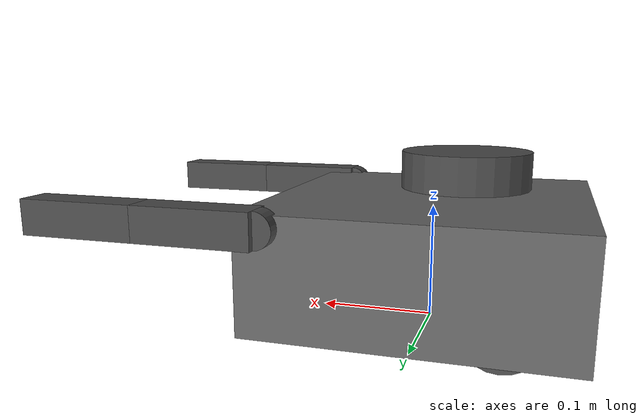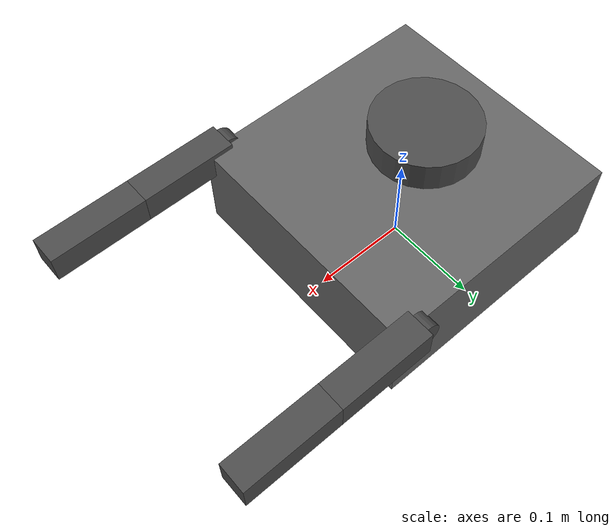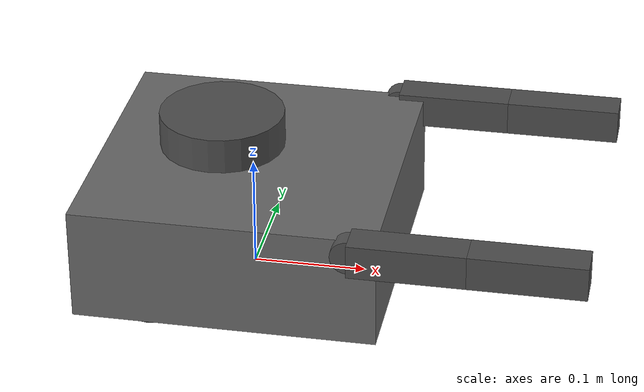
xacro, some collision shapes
<?xml version="1.0" ?>
<!-- |    This document was autogenerated by xacro from /home/duckbe/catkin_ws/src/my_simulations/urdf/turtlebot3_my_model.urdf.xacro | -->
<!-- |    EDITING THIS FILE BY HAND IS NOT RECOMMENDED                                 | -->
<robot name="turtlebot3_my_model" xmlns:xacro="http://ros.org/wiki/xacro">
    <xacro:include filename="$(find my_simulations)/urdf/turtlebot3_my_model.gazebo.xacro"/>

    <link name="base_footprint" />

    <joint name="base_joint" type="fixed">
        <parent link="base_footprint" />
        <child link="base_link" />
        <origin rpy="0 0 0" xyz="0 0 0.06" />
        <!-- Initial point because child & parent link -->
    </joint>

    <!-- Deliver robot Base -->
    <link name="base_link">
        <visual>
            <!-- refer sdf (Initial point reference point)-->
            <origin rpy="0 0 0" xyz="0 0 0.0" />
            <geometry>
                <box size="0.265 0.265 0.1" />
            </geometry>
            <material name="light_black" />
        </visual>
        <collision>
            <!-- refer sdf(Initial point reference point) -->
            <origin rpy="0 0 0" xyz="0 0 0" />
            <geometry>
                <!-- refer sdf(Initial point reference point) -->
                <box size="0.265 0.265 0.1" />
            </geometry>
        </collision>

        <inertial>
            <origin rpy="0 0 0" xyz="0 0 0.0" />
            <mass value="1.5" />
            <inertia ixx="8.7002718e-03" ixy="-4.7576583e-05" ixz="1.1160499e-04"
                    iyy="8.6195418e-03" iyz="-3.5422299e-06"
                    izz="1.4612727e-02" />
        </inertial>
    </link>

    <!-- Deliver robot Caster-->
    <!-- refer sdf (Initial point reference point)-->
    <joint name="caster_back_joint" type="fixed">
        <parent link="base_link" />
        <child link="caster_back_link" />
        <origin rpy="0 0 0" xyz="0.11 0 -0.055" />
    </joint>

    <link name="caster_back_link">
        <visual>
            <!-- refer sdf (Initial point reference point)-->
            <origin rpy="0 0 0" xyz="0 0 0" />
            <geometry>
                <sphere radius="0.005" />
            </geometry>
            <material name="light_black" />
        </visual>
        <collision>
            <origin rpy="0 0 0" xyz="0 0 0" />
            <geometry>
                <sphere radius="0.005" />
            </geometry>
        </collision>

        <inertial>
            <origin xyz="0 0 0" />
            <mass value="0.005" />
            <inertia ixx="0.001" ixy="0.0" ixz="0.0"
                    iyy="0.001" iyz="0.0"
                    izz="0.001" />
        </inertial>
    </link>

    <!-- Deliver robot Left Wheel-->
    <!-- refer sdf (Initial point reference point)-->
    <joint name="wheel_left_joint" type="continuous">
        <parent link="base_link" />
        <child link="wheel_left_link" />
        <origin rpy="-1.57 0 0" xyz="-0.07 0.11 -0.027" />
        <axis xyz="0 0 1" />
    </joint>

    <link name="wheel_left_link">
        <visual>
            <origin rpy="0 0 0" xyz="0 0 0" />
            <geometry>
                <cylinder length="0.018" radius="0.033" />
            </geometry>
            <material name="dark" />
        </visual>
        <collision>
            <origin rpy="0 0 0" xyz="0 0 0" />
            <geometry>
                <cylinder length="0.018" radius="0.033" />
            </geometry>
        </collision>

        <inertial>
            <origin xyz="0 0 0" />
            <mass value="2.8498940e-02" />
            <inertia ixx="1.1175580e-05" ixy="-4.2369783e-11" ixz="-5.9381719e-09"
                    iyy="1.1192413e-05" iyz="-1.4400107e-11"
                    izz="2.0712558e-05" />
        </inertial>
    </link>

    <!-- Deliver robot Right Wheel -->
    <!-- refer sdf (Initial point reference point)-->
    <joint name="wheel_right_joint" type="continuous">
        <parent link="base_link" />
        <child link="wheel_right_link" />
        <origin rpy="-1.57 0 0" xyz="-0.07 -0.11 -0.027" />
        <axis xyz="0 0 1" />
    </joint>

    <link name="wheel_right_link">
        <visual>
            <origin rpy="0 0 0" xyz="0 0 0" />
            <geometry>
                <cylinder length="0.018" radius="0.033" />
            </geometry>
            <material name="dark" />
        </visual>
        <collision>
            <origin rpy="0 0 0" xyz="0 0 0" />
            <geometry>
                <cylinder length="0.018" radius="0.033" />
            </geometry>
        </collision>

        <inertial>
            <origin xyz="0 0 0" />
            <mass value="2.8498940e-02" />
            <inertia ixx="1.1175580e-05" ixy="-4.2369783e-11" ixz="-5.9381719e-09"
                    iyy="1.1192413e-05" iyz="-1.4400107e-11"
                    izz="2.0712558e-05" />
        </inertial>
    </link>

    <!-- Deliver robot joint1-->
    <joint name="joint1_left_joint" type="revolute">
        <!--revolute have to limit-->
        <parent link="base_link" />
        <child link="joint1_left_link" />
        <origin rpy="-1.57 0 0" xyz="0.11 -0.135 0.04" />
        <axis xyz="0 0 1" />
        <!--Force, degree max min, velocity-->
        <limit effort="3" lower="-2.617" upper="2.617" velocity="0.05" />
    </joint>

    <link name="joint1_left_link">
        <visual>
            <origin rpy="0 0 0" xyz="0 0 0" />
            <geometry>
                <cylinder length="0.018" radius="0.015" />
            </geometry>
            <material name="dark" />
        </visual>
        <collision>
            <origin rpy="0 0 0" xyz="0 0 0" />
            <geometry>
                <cylinder length="0.018" radius="0.015" />
            </geometry>
        </collision>
        <visual>
            <origin rpy="0 0 0" xyz="0.05 0 0" />
            <geometry>
                <box size="0.1 0.03 0.03" />
            </geometry>
            <material name="dark" />
        </visual>
        <collision>
            <origin rpy="0 0 0" xyz="0.05 0 0" />
            <geometry>
                <box size="0.1 0.03 0.03" />
            </geometry>
        </collision>

        <inertial>
            <origin xyz="0.05 0 0" />
            <mass value="0.01" />
            <inertia ixx="1.6425e-6" ixy="0" ixz="0" iyy="1.6425e-6" iyz="0" izz="1.125e-6" />
        </inertial>
    </link>

    <joint name="joint1_right_joint" type="revolute">
        <parent link="base_link" />
        <child link="joint1_right_link" />
        <origin rpy="-1.57 0 0" xyz="0.11 0.135 0.04" />
        <axis xyz="0 0 1" />
        <limit effort="3" lower="-2.617" upper="2.617" velocity="0.05" />
    </joint>

    <link name="joint1_right_link">
        <visual>
            <origin rpy="0 0 0" xyz="0 0 0" />
            <geometry>
                <cylinder length="0.018" radius="0.015" />
            </geometry>
            <material name="dark" />
        </visual>
        <collision>
            <origin rpy="0 0 0" xyz="0 0 0" />
            <geometry>
                <cylinder length="0.018" radius="0.015" />
            </geometry>
        </collision>
        <visual>
            <origin rpy="0 0 0" xyz="0.05 0 0" />
            <geometry>
                <box size="0.1 0.03 0.03" />
            </geometry>
            <material name="dark" />
        </visual>
        <collision>
            <origin rpy="0 0 0" xyz="0.05 0 0" />
            <geometry>
                <box size="0.1 0.03 0.03" />
            </geometry>
        </collision>

        <inertial>
            <origin xyz="0.05 0 0" />
            <mass value="0.01" />
            <inertia ixx="1.6425e-6" ixy="0" ixz="0" iyy="1.6425e-6" iyz="0" izz="1.125e-6" />
        </inertial>
    </link>

    <!-- Deliver robot joint2-->
    <joint name="joint2_left_joint" type="revolute">
        <parent link="joint1_left_link" />
        <child link="joint2_left_link" />
        <origin rpy="0 0 0" xyz="0.1 0 0" />
        <axis xyz="0 0 1" />
        <limit effort="3" lower="-2.617" upper="2.617" velocity="0.05" />
    </joint>
    <link name="joint2_left_link">
        <visual>
            <origin rpy="0 0 0" xyz="0 0 0" />
            <geometry>
                <cylinder length="0.018" radius="0.015" />
            </geometry>
            <material name="dark" />
        </visual>
        <collision>
            <origin rpy="0 0 0" xyz="0 0 0" />
            <geometry>
                <cylinder length="0.018" radius="0.015" />
            </geometry>
        </collision>
        <visual>
            <origin rpy="0 0 0" xyz="0.05 0 0" />
            <geometry>
                <box size="0.1 0.03 0.03" />
            </geometry>
            <material name="dark" />
        </visual>
        <collision>
            <origin rpy="0 0 0" xyz="0.05 0 0" />
            <geometry>
                <box size="0.1 0.03 0.03" />
            </geometry>
        </collision>

        <inertial>
            <origin xyz="0.05 0 0" />
            <mass value="0.01" />
            <inertia ixx="1.6425e-6" ixy="0" ixz="0" iyy="1.6425e-6" iyz="0" izz="1.125e-6" />
        </inertial>
    </link>

    <joint name="joint2_right_joint" type="revolute">
        <parent link="joint1_right_link" />
        <child link="joint2_right_link" />
        <origin rpy="0 0 0" xyz="0.1 0 0" />
        <axis xyz="0 0 1" />
        <limit effort="3" lower="-2.617" upper="2.617" velocity="0.05" />
    </joint>
    <link name="joint2_right_link">
        <visual>
            <origin rpy="0 0 0" xyz="0 0 0" />
            <geometry>
                <cylinder length="0.018" radius="0.015" />
            </geometry>
            <material name="dark" />
        </visual>
        <collision>
            <origin rpy="0 0 0" xyz="0 0 0" />
            <geometry>
                <cylinder length="0.018" radius="0.015" />
            </geometry>
        </collision>
        <visual>
            <origin rpy="0 0 0" xyz="0.05 0 0" />
            <geometry>
                <box size="0.1 0.03 0.03" />
            </geometry>
            <material name="dark" />
        </visual>
        <collision>
            <origin rpy="0 0 0" xyz="0.05 0 0" />
            <geometry>
                <box size="0.1 0.03 0.03" />
            </geometry>
        </collision>

        <inertial>
            <origin xyz="0.05 0 0" />
            <mass value="0.01" />
            <inertia ixx="1.6425e-6" ixy="0" ixz="0" iyy="1.6425e-6" iyz="0" izz="1.125e-6" />
        </inertial>
    </link>

    <!-- Deliver robot IMU-->
    <joint name="imu_joint" type="fixed">
        <parent link="base_link" />
        <child link="imu_link" />
        <origin rpy="0 0 0" xyz="0.0 0 -0.048" />
    </joint>
    <link name="imu_link" />

    <!-- Deliver robot scan-->
    <joint name="scan_joint" type="fixed">
        <parent link="base_link" />
        <child link="base_scan" />
        <origin rpy="0 0 3.14" xyz="-0.012 0 0.08" />
    </joint>
    <link name="base_scan">
        <visual>
            <origin rpy="0 0 0" xyz="0 0 0" />
            <geometry>
                <mesh filename="package://turtlebot3_description/meshes/sensors/lds.stl" scale="0.001 0.001 0.001" />
            </geometry>
            <material name="dark" />
        </visual>
        <collision>
            <origin rpy="0 0 0" xyz="0.015 0 -0.0065" />
            <geometry>
                <cylinder length="0.0315" radius="0.055" />
            </geometry>
        </collision>

        <inertial>
            <mass value="0.114" />
            <origin xyz="0 0 0" />
            <inertia ixx="0.001" ixy="0.0" ixz="0.0" iyy="0.001" iyz="0.0" izz="0.001" />
        </inertial>
    </link>

    <transmission name="trans_joint1_left_joint">
        <type>transmission_interface/SimpleTransmission</type>
        <joint name="joint1_left_joint">
            <hardwareInterface>hardware_interface/EffortJointInterface</hardwareInterface>
        </joint>
        <actuator name="joint1_left_joint_motor">
            <hardwareInterface>hardware_interface/EffortJointInterface</hardwareInterface>
            <mechanicalReduction>1</mechanicalReduction>
        </actuator>
    </transmission>
    <transmission name="trans_joint1_right_joint">
        <type>transmission_interface/SimpleTransmission</type>
        <joint name="joint1_right_joint">
            <hardwareInterface>hardware_interface/EffortJointInterface</hardwareInterface>
        </joint>
        <actuator name="joint1_right_joint_motor">
            <hardwareInterface>hardware_interface/EffortJointInterface</hardwareInterface>
            <mechanicalReduction>1</mechanicalReduction>
        </actuator>
    </transmission>
    <transmission name="trans_joint2_left_joint">
        <type>transmission_interface/SimpleTransmission</type>
        <joint name="joint2_left_joint">
            <hardwareInterface>hardware_interface/EffortJointInterface</hardwareInterface>
        </joint>
        <actuator name="joint2_left_joint_motor">
            <hardwareInterface>hardware_interface/EffortJointInterface</hardwareInterface>
            <mechanicalReduction>1</mechanicalReduction>
        </actuator>
    </transmission>
    <transmission name="trans_joint2_right_joint">
        <type>transmission_interface/SimpleTransmission</type>
        <joint name="joint2_right_joint">
            <hardwareInterface>hardware_interface/EffortJointInterface</hardwareInterface>
        </joint>
        <actuator name="joint2_right_joint_motor">
            <hardwareInterface>hardware_interface/EffortJointInterface</hardwareInterface>
            <mechanicalReduction>1</mechanicalReduction>
        </actuator>
    </transmission>

</robot>

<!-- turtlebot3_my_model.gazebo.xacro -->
<robot name="turtlebot3_my_model_sim" xmlns:xacro="http://ros.org/wiki/xacro">
    <xacro:arg name="laser_visual"  default="false"/>
    <xacro:arg name="imu_visual"    default="false"/>

   <!-- Init colour -->
    <material name="black">
        <color rgba="0.0 0.0 0.0 1.0" />
    </material>
    <material name="dark">
        <color rgba="0.3 0.3 0.3 1.0" />
    </material>
    <material name="light_black">
        <color rgba="0.4 0.4 0.4 1.0" />
    </material>
    <material name="blue">
        <color rgba="0.0 0.0 0.8 1.0" />
    </material>
    <material name="green">
        <color rgba="0.0 0.8 0.0 1.0" />
    </material>
    <material name="grey">
        <color rgba="0.5 0.5 0.5 1.0" />
    </material>
    <material name="orange">
        <color rgba="1.0 0.423529411765 0.0392156862745 1.0" />
    </material>
    <material name="brown">
        <color rgba="0.870588235294 0.811764705882 0.764705882353 1.0" />
    </material>
    <material name="red">
        <color rgba="0.8 0.0 0.0 1.0" />
    </material>
    <material name="white">
        <color rgba="1.0 1.0 1.0 1.0" />
    </material>
    <gazebo reference="base_link">
        <material>Gazebo/DarkGrey</material>
    </gazebo>
    <gazebo reference="wheel_left_link">
        <mu1>0.1</mu1>
        <mu2>0.1</mu2>
        <kp>500000.0</kp>
        <kd>10.0</kd>
        <minDepth>0.001</minDepth>
        <maxVel>0.1</maxVel>
        <fdir1>1 0 0</fdir1>
        <material>Gazebo/FlatBlack</material>
    </gazebo>
    <gazebo reference="wheel_right_link">
        <mu1>0.1</mu1>
        <mu2>0.1</mu2>
        <kp>500000.0</kp>
        <kd>10.0</kd>
        <minDepth>0.001</minDepth>
        <maxVel>0.1</maxVel>
        <fdir1>1 0 0</fdir1>
        <material>Gazebo/FlatBlack</material>
    </gazebo>
    <gazebo reference="caster_back_link">
        <mu1>0.1</mu1>
        <mu2>0.1</mu2>
        <kp>1000000.0</kp>
        <kd>100.0</kd>
        <minDepth>0.001</minDepth>
        <maxVel>1.0</maxVel>
        <material>Gazebo/FlatBlack</material>
    </gazebo>
    <gazebo reference="joint1_left_link">
        <mu1>0.1</mu1>
        <mu2>0.1</mu2>
        <kp>500000.0</kp>
        <kd>10.0</kd>
        <minDepth>0.001</minDepth>
        <maxVel>0.05</maxVel>
        <fdir1>1 0 0</fdir1>
        <material>Gazebo/FlatBlack</material>
    </gazebo>
    <gazebo reference="joint1_right_link">
        <mu1>0.1</mu1>
        <mu2>0.1</mu2>
        <kp>500000.0</kp>
        <kd>10.0</kd>
        <minDepth>0.001</minDepth>
        <maxVel>0.05</maxVel>
        <fdir1>1 0 0</fdir1>
        <material>Gazebo/FlatBlack</material>
    </gazebo>
    <gazebo reference="link1_left_link">
        <mu1>0.1</mu1>
        <mu2>0.1</mu2>
        <kp>500000.0</kp>
        <kd>10.0</kd>
        <minDepth>0.001</minDepth>
        <maxVel>0.05</maxVel>
        <fdir1>1 0 0</fdir1>
        <material>Gazebo/FlatBlack</material>
    </gazebo>
    <gazebo reference="link1_right_link">
        <mu1>0.1</mu1>
        <mu2>0.1</mu2>
        <kp>500000.0</kp>
        <kd>10.0</kd>
        <minDepth>0.001</minDepth>
        <maxVel>0.05</maxVel>
        <fdir1>1 0 0</fdir1>
        <material>Gazebo/FlatBlack</material>
    </gazebo>
    <gazebo reference="joint2_left_link">
        <mu1>0.1</mu1>
        <mu2>0.1</mu2>
        <kp>500000.0</kp>
        <kd>10.0</kd>
        <minDepth>0.001</minDepth>
        <maxVel>0.05</maxVel>
        <fdir1>1 0 0</fdir1>
        <material>Gazebo/FlatBlack</material>
    </gazebo>
    <gazebo reference="joint2_right_link">
        <mu1>0.1</mu1>
        <mu2>0.1</mu2>
        <kp>500000.0</kp>
        <kd>10.0</kd>
        <minDepth>0.001</minDepth>
        <maxVel>0.05</maxVel>
        <fdir1>1 0 0</fdir1>
        <material>Gazebo/FlatBlack</material>
    </gazebo>
    <gazebo reference="link2_left_link">
        <mu1>0.1</mu1>
        <mu2>0.1</mu2>
        <kp>500000.0</kp>
        <kd>10.0</kd>
        <minDepth>0.001</minDepth>
        <maxVel>0.05</maxVel>
        <fdir1>1 0 0</fdir1>
        <material>Gazebo/FlatBlack</material>
    </gazebo>
    <gazebo reference="link2_right_link">
        <mu1>0.1</mu1>
        <mu2>0.1</mu2>
        <kp>500000.0</kp>
        <kd>10.0</kd>
        <minDepth>0.001</minDepth>
        <maxVel>0.05</maxVel>
        <fdir1>1 0 0</fdir1>
        <material>Gazebo/FlatBlack</material>
    </gazebo>
    <gazebo reference="imu_link">
        <sensor name="imu" type="imu">
            <always_on>true</always_on>
            <visualize>false</visualize>
        </sensor>
        <material>Gazebo/FlatBlack</material>
    </gazebo>
    <gazebo>
        <plugin filename="libgazebo_ros_diff_drive.so" name="turtlebot3_my_model_controller">
            <commandTopic>cmd_vel</commandTopic>
            <odometryTopic>odom</odometryTopic>
            <odometryFrame>odom</odometryFrame>
            <odometrySource>world</odometrySource>
            <publishOdomTF>true</publishOdomTF>
            <robotBaseFrame>base_footprint</robotBaseFrame>
            <publishWheelTF>false</publishWheelTF>
            <publishTf>true</publishTf>
            <publishWheelJointState>true</publishWheelJointState>
            <legacyMode>false</legacyMode>
            <updateRate>30</updateRate>
            <leftJoint>wheel_left_joint</leftJoint>
            <rightJoint>wheel_right_joint</rightJoint>
            <wheelSeparation>0.287</wheelSeparation>
            <wheelDiameter>0.066</wheelDiameter>
            <wheelAcceleration>1</wheelAcceleration>
            <wheelTorque>10</wheelTorque>
            <rosDebugLevel>na</rosDebugLevel>
        </plugin>
    </gazebo>
    <gazebo>
        <plugin filename="libgazebo_ros_imu.so" name="imu_plugin">
            <alwaysOn>true</alwaysOn>
            <bodyName>imu_link</bodyName>
            <frameName>imu_link</frameName>
            <topicName>imu</topicName>
            <serviceName>imu_service</serviceName>
            <gaussianNoise>0.0</gaussianNoise>
            <updateRate>200</updateRate>
            <imu>
                <noise>
                    <type>gaussian</type>
                    <rate>
                        <mean>0.0</mean>
                        <stddev>2e-4</stddev>
                        <bias_mean>0.0000075</bias_mean>
                        <bias_stddev>0.0000008</bias_stddev>
                    </rate>
                    <accel>
                        <mean>0.0</mean>
                        <stddev>1.7e-2</stddev>
                        <bias_mean>0.1</bias_mean>
                        <bias_stddev>0.001</bias_stddev>
                    </accel>
                </noise>
            </imu>
        </plugin>
    </gazebo>
    <gazebo reference="base_scan">
        <material>Gazebo/FlatBlack</material>
        <sensor name="lds_lfcd_sensor" type="ray">
            <pose>0 0 0 0 0 0</pose>
            <visualize>false</visualize>
            <update_rate>5</update_rate>
            <ray>
                <scan>
                    <horizontal>
                        <samples>360</samples>
                        <resolution>1</resolution>
                        <min_angle>0.0</min_angle>
                        <max_angle>6.28319</max_angle>
                    </horizontal>
                </scan>
                <range>
                    <min>0.120</min>
                    <max>3.5</max>
                    <resolution>0.015</resolution>
                </range>
                <noise>
                    <type>gaussian</type>
                    <mean>0.0</mean>
                    <stddev>0.01</stddev>
                </noise>
            </ray>
            <plugin filename="libgazebo_ros_laser.so" name="gazebo_ros_lds_lfcd_controller">
                <topicName>scan</topicName>
                <frameName>base_scan</frameName>
            </plugin>
        </sensor>
    </gazebo>

    <gazebo>
        <plugin name="gazebo_ros_control" filename="libgazebo_ros_control.so">
            <robotNamespace>/</robotNamespace>
            <legacyModeNS>true</legacyModeNS>
        </plugin>
    </gazebo>
</robot>
